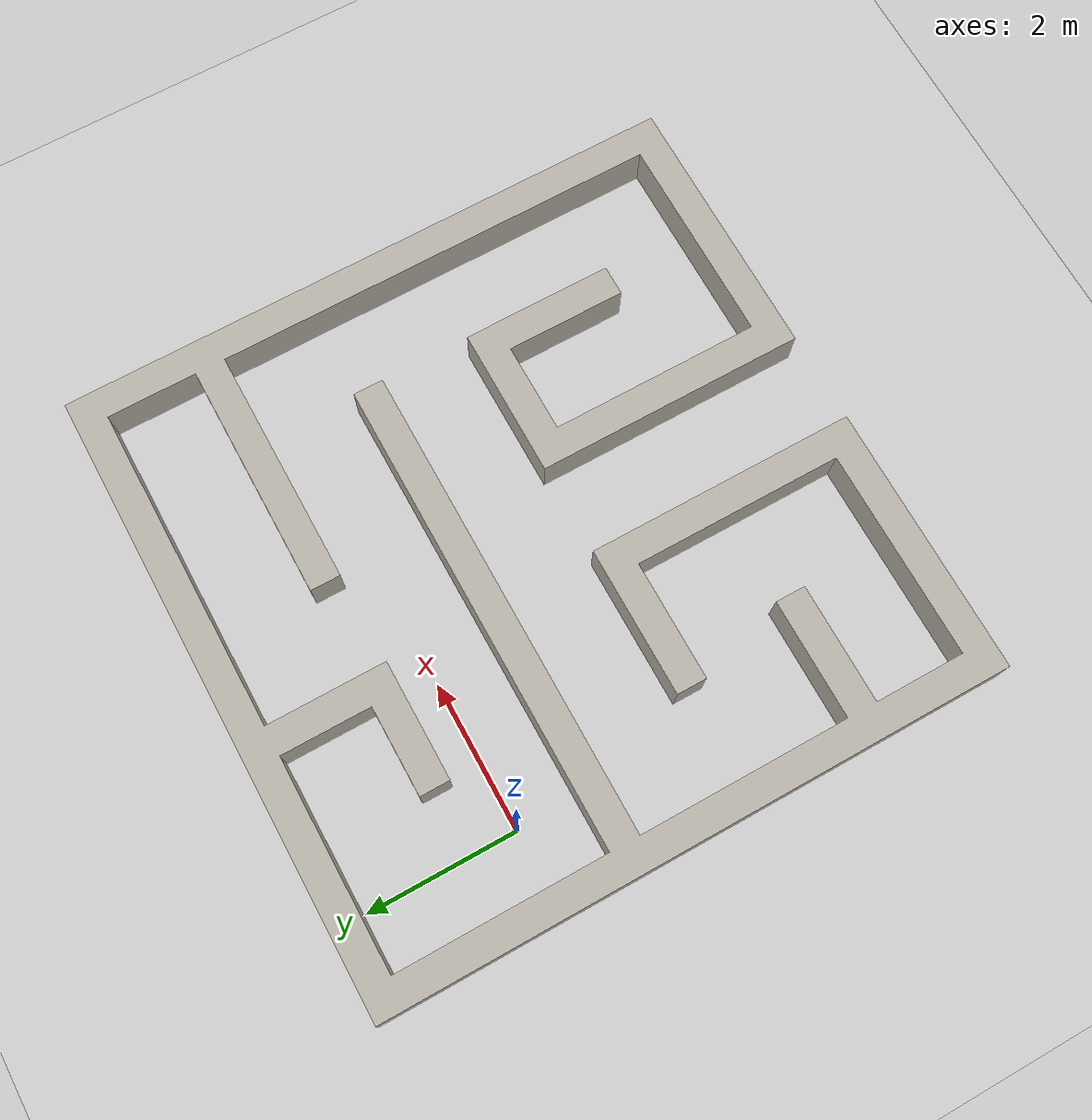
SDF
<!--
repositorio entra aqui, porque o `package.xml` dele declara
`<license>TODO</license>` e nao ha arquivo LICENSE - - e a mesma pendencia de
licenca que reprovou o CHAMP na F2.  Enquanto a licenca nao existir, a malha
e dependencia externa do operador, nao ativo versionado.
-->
<?xml version="1.0"?>
<sdf version="1.9">
  <world name="quadruped_maze">
    <physics name="1ms" type="ignored">
      <max_step_size>0.001</max_step_size>
      <real_time_factor>1.0</real_time_factor>
    </physics>

    <plugin filename="gz-sim-physics-system"
            name="gz::sim::systems::Physics"/>
    <plugin filename="gz-sim-user-commands-system"
            name="gz::sim::systems::UserCommands"/>
    <plugin filename="gz-sim-scene-broadcaster-system"
            name="gz::sim::systems::SceneBroadcaster"/>
    <plugin filename="gz-sim-sensors-system"
            name="gz::sim::systems::Sensors">
      <render_engine>ogre2</render_engine>
    </plugin>
    <plugin filename="gz-sim-contact-system"
            name="gz::sim::systems::Contact"/>

    <scene>
      <ambient>1 1 1 1</ambient>
      <background>0.3 0.7 0.9 1</background>
      <shadows>false</shadows>
    </scene>

    <light type="directional" name="sun">
      <pose>0 0 10 0 0 0</pose>
      <diffuse>0.8 0.8 0.8 1</diffuse>
      <specular>0.2 0.2 0.2 1</specular>
      <direction>-0.5 0.1 -0.9</direction>
    </light>

    <model name="ground_plane">
      <static>true</static>
      <link name="link">
        <collision name="collision">
          <geometry>
            <plane><normal>0 0 1</normal><size>100 100</size></plane>
          </geometry>
        </collision>
        <visual name="visual">
          <geometry>
            <plane><normal>0 0 1</normal><size>100 100</size></plane>
          </geometry>
          <material>
            <ambient>0.8 0.8 0.8 1</ambient>
            <diffuse>0.8 0.8 0.8 1</diffuse>
          </material>
        </visual>
      </link>
    </model>

    <!-- maze10 a 2x.  Pegada 8.40 x 8.40 m, corredor 1.20 m, parede 0.40 m de
         espessura por 0.60 m de altura. -->
    <model name="labirinto">
      <static>true</static>
      <pose>-2.670 3.061 0 0 0 0</pose>
      <link name="link">
        <collision name="collision">
          <geometry>
            <mesh>
              <scale>0.002 0.002 0.002</scale>
              <uri>model://maze10/meshes/maze10.stl</uri>
            </mesh>
          </geometry>
        </collision>
        <visual name="visual">
          <geometry>
            <mesh>
              <scale>0.002 0.002 0.002</scale>
              <uri>model://maze10/meshes/maze10.stl</uri>
            </mesh>
          </geometry>
          <material>
            <ambient>0.72 0.70 0.66 1</ambient>
            <diffuse>0.72 0.70 0.66 1</diffuse>
            <specular>0.1 0.1 0.1 1</specular>
          </material>
        </visual>
      </link>
    </model>
  </world>
</sdf>
